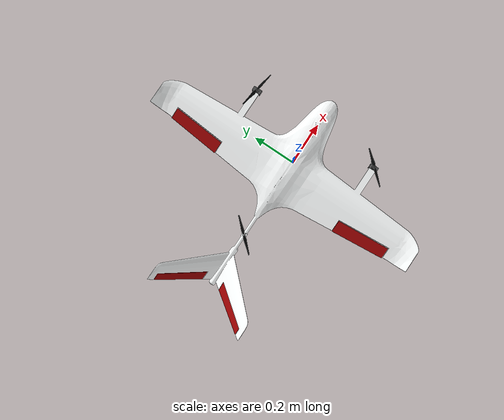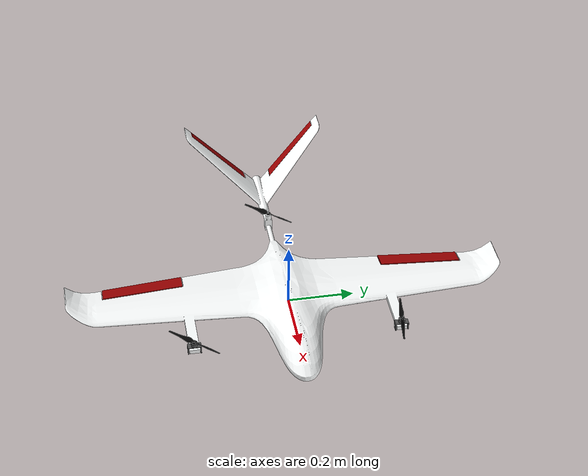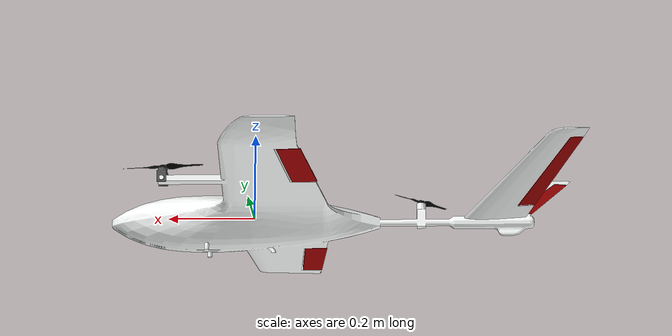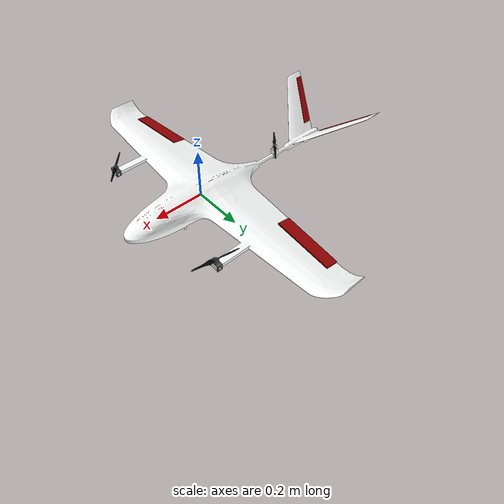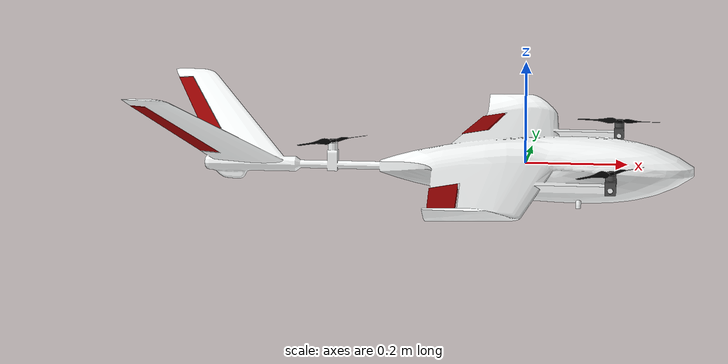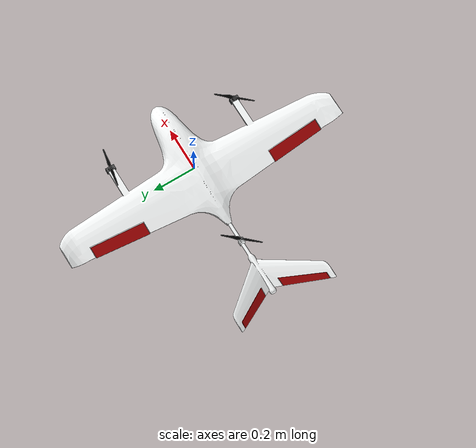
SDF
<?xml version="1.0"?>
<sdf version="1.9">
  <model name="tilt_tricopter_vtol">

    <!-- ==================== FUSELAGE / BASE LINK ==================== -->
    <link name="base_link">
      <pose>0 0 0 0 0 0</pose>
      <inertial>
        <pose>0 0 0 0 0 0</pose>
        <mass>1.8</mass>
        <inertia>
          <ixx>0.12</ixx>
          <ixy>0</ixy>
          <ixz>0</ixz>
          <iyy>0.08</iyy>
          <iyz>0</iyz>
          <izz>0.18</izz>
        </inertia>
      </inertial>

      <collision name='base_link_collision'>
        <pose degrees="true">0 0 0 0 0 0</pose>
        <geometry>
          <mesh>
            <scale>1 1 1</scale>
            <uri>model://stallion_vtol/meshes/base_link.dae</uri>
          </mesh>
        </geometry>
      </collision>

      <visual name='base_link_visual'>
        <pose degrees="true">0 0 0 0 0 0</pose>
        <geometry>
          <mesh>
            <scale>1 1 1</scale>
            <uri>model://stallion_vtol/meshes/base_link.dae</uri>
          </mesh>
        </geometry>
        <material>
          <diffuse>0.990196109 1 1 1</diffuse>
          <ambient>0.990196109 1 1 1</ambient>
        </material>
      </visual>

      <sensor name="imu_sensor" type="imu">
        <pose degrees="true">0 0 0 180 0 0</pose>
        <always_on>1</always_on>
        <update_rate>1000.0</update_rate>
      </sensor>
      <sensor name="navsat_sensor" type="navsat">
        <always_on>1</always_on>
        <update_rate>1</update_rate>
      </sensor>

      <!-- FPV Camera Sensor -->
      <sensor name="fpv_camera" type="camera">
        <!-- x, y, z, roll, pitch, yaw. Placed 0.4m forward at the nose -->
        <pose degrees="true">-0.3 0 0.1 0 0 0</pose>
        <always_on>1</always_on>
        <update_rate>60.0</update_rate>
        <camera name="fpv_cam">
          <!-- 80 degree Field of View -->
          <horizontal_fov>1.39626</horizontal_fov>
          <image>
            <width>1080</width>
            <height>720</height>
            <format>R8G8B8</format>
          </image>
          <clip>
            <near>0.1</near>
            <far>10000</far>
          </clip>
        </camera>
        <topic>/fpv_camera/image</topic>
      </sensor>
    </link>

    <!-- ==================== FRONT LEFT TILT MECHANISM ==================== -->
    <!-- Front-Left Tilt Arm -->
    <link name="tilt_arm_fl">
      <pose relative_to="tilt_joint_fl">0 0 0 0 0 0</pose>
      <inertial>
        <pose>0 0.02 0.014 0 0 0</pose>
        <mass>0.140</mass>
        <inertia>
          <ixx>1.6508046241417101e-06</ixx>
          <ixy>-5.1572666366376299e-23</ixy>
          <ixz>-9.1555688118111702e-23</ixz>
          <iyy>8.1074718631536401e-07</iyy>
          <iyz>3.83386639583297e-23</iyz>
          <izz>1.2810119697389901e-06</izz>
        </inertia>
      </inertial>

      <collision name='L_Tilt_collision'>
        <pose>0 0 0 0 0 0</pose>
        <geometry>
          <mesh>
            <scale>1 1 1</scale>
            <uri>model://stallion_vtol/meshes/L_Tilt.dae</uri>
          </mesh>
        </geometry>
      </collision>

      <visual name='L_Tilt_visual'>
        <pose>0 0 0 0 0 0</pose>
        <geometry>
          <mesh>
            <scale>1 1 1</scale>
            <uri>model://stallion_vtol/meshes/L_Tilt.dae</uri>
          </mesh>
        </geometry>
        <material>
          <diffuse>0.313725501 0.313725501 0.313725501 1</diffuse>
          <ambient>0.313725501 0.313725501 0.313725501 1</ambient>
        </material>
      </visual>
    </link>

    <!-- Front-Left Tilt Joint (Pitch axis tilt for vector yaw / forward flight) -->
    <joint name="tilt_joint_fl" type="revolute">
      <parent>base_link</parent>
      <child>tilt_arm_fl</child>
      <pose relative_to='base_link'>0.176 0.289 0.01 0 0 0</pose>
      <axis>
        <xyz>0 1 0</xyz> <!-- Pitch axis rotation -->
        <limit>
          <lower>-0.349</lower> <!-- -20 deg -->
          <upper>1.5708</upper>  <!-- +90 deg (forward flight) -->
          <effort>10</effort>
          <velocity>5</velocity>
        </limit>
        <dynamics>
          <damping>0.01</damping>
        </dynamics>
      </axis>
    </joint>

    <!-- Front-Left Propeller -->
    <link name="prop_fl">
      <pose relative_to="prop_joint_fl">0 0 0 0 0 0</pose>
      <inertial>
        <pose>0 0 -0.0027139163672551501 0 0 0</pose>
        <mass>0.010</mass>
        <inertia>
          <ixx>7.9212961749149794e-08</ixx>
          <ixy>3.4408539846694802e-07</ixy>
          <ixz>1.6110368408473699e-11</ixz>
          <iyy>2.12041876255836e-06</iyy>
          <iyz>-2.9625649082959198e-12</iyz>
          <izz>2.1858969773452702e-06</izz>
        </inertia>
      </inertial>

      <collision name='L_Prop_collision'>
        <pose>0 0 0 0 0 0</pose>
        <geometry>
          <mesh>
            <scale>1 1 1</scale>
            <uri>model://stallion_vtol/meshes/L_Prop.dae</uri>
          </mesh>
        </geometry>
      </collision>

      <visual name='L_Prop_visual'>
        <pose>0 0 0 0 0 0</pose>
        <geometry>
          <mesh>
            <scale>1 1 1</scale>
            <uri>model://stallion_vtol/meshes/L_Prop.dae</uri>
          </mesh>
        </geometry>
        <material>
          <ambient>0.01 0.01 0.01 1</ambient>
          <diffuse>0.01 0.01 0.01 1</diffuse>
          <specular>0.01 0.01 0.01 1</specular>
        </material>
      </visual>
    </link>

    <!-- Front-Left Propeller Joint -->
    <joint name="prop_joint_fl" type="revolute">
      <parent>tilt_arm_fl</parent>
      <child>prop_fl</child>
      <pose relative_to='tilt_arm_fl'>0 0.02 0.032 0 0 0</pose>
      <axis>
        <xyz>0 0 1</xyz>
        <dynamics>
          <damping>0.0001</damping>
        </dynamics>
        <limit>
          <lower>-1e16</lower>
          <upper>1e16</upper>
        </limit>
      </axis>
    </joint>

    <!-- ==================== FRONT RIGHT TILT MECHANISM ==================== -->
    <!-- Front-Right Tilt Arm -->
    <link name="tilt_arm_fr">
      <pose relative_to='tilt_joint_fr'>0 0 0 0 0 0</pose>
      <inertial>
        <pose>0 0.02 0.014 0 0 0</pose>
        <mass>0.140</mass>
        <inertia>
          <ixx>1.6508046241417101e-06</ixx>
          <ixy>-2.01032599132299e-22</ixy>
          <ixz>2.1343224645573699e-22</ixz>
          <iyy>8.1074718631536295e-07</iyy>
          <iyz>-7.8070651190802401e-23</iyz>
          <izz>1.2810119697389901e-06</izz>
        </inertia>
      </inertial>

      <collision name='R_Tilt_collision'>
        <pose>0 0 0 0 0 0</pose>
        <geometry>
          <mesh>
            <scale>1 1 1</scale>
            <uri>model://stallion_vtol/meshes/R_Tilt.dae</uri>
          </mesh>
        </geometry>
      </collision>

      <visual name='R_Tilt_visual'>
        <pose>0 0 0 0 0 0</pose>
        <geometry>
          <mesh>
            <scale>1 1 1</scale>
            <uri>model://stallion_vtol/meshes/R_Tilt.dae</uri>
          </mesh>
        </geometry>
        <material>
          <diffuse>0.313725501 0.313725501 0.313725501 1</diffuse>
          <ambient>0.313725501 0.313725501 0.313725501 1</ambient>
        </material>
      </visual>

    </link>

    <!-- Front-Right Tilt Joint -->
    <joint name="tilt_joint_fr" type="revolute">
      <parent>base_link</parent>
      <child>tilt_arm_fr</child>
      <pose relative_to='base_link'>0.176 -0.2888 0.01 0 0 -3.14</pose>
      <axis>
        <xyz>0 -1 0</xyz> <!-- Pitch axis rotation -->
        <limit>
          <lower>-0.349</lower> <!-- -20 deg -->
          <upper>1.5708</upper>  <!-- +90 deg (forward flight) -->
          <effort>10</effort>
          <velocity>5</velocity>
        </limit>
        <dynamics>
          <damping>0.01</damping>
        </dynamics>
      </axis>
    </joint>

    <!-- Front-Right Propeller -->
    <link name="prop_fr">
      <pose relative_to="prop_joint_fr">0 0 0 0 0 0</pose>
      <inertial>
        <pose>0 0 -0.0027139221164931299 0 0 0</pose>
        <mass>0.010</mass>
        <inertia>
          <ixx>1.2319838350847699e-06</ixx>
          <ixy>-1.0689043188687799e-06</ixy>
          <ixz>1.1083054254393199e-11</ixz>
          <iyy>9.6764767051378306e-07</iyy>
          <iyz>1.20607963356524e-11</iyz>
          <izz>2.1858967688241502e-06</izz>
        </inertia>
      </inertial>

      <collision name='R_Prop_collision'>
        <pose>0 0 0 0 0 0</pose>
        <geometry>
          <mesh>
            <scale>1 1 1</scale>
            <uri>model://stallion_vtol/meshes/R_Prop.dae</uri>
          </mesh>
        </geometry>
      </collision>

      <visual name='R_Prop_visual'>
        <pose>0 0 0 0 0 0</pose>
        <geometry>
          <mesh>
            <scale>1 1 1</scale>
            <uri>model://stallion_vtol/meshes/R_Prop.dae</uri>
          </mesh>
        </geometry>
        <material>
          <ambient>0.01 0.01 0.01 1</ambient>
          <diffuse>0.01 0.01 0.01 1</diffuse>
          <specular>0.01 0.01 0.01 1</specular>
        </material>
      </visual>
    </link>

    <!-- Front-Right Propeller Joint -->
    <joint name="prop_joint_fr" type="revolute">
      <parent>tilt_arm_fr</parent>
      <child>prop_fr</child>
      <pose relative_to='tilt_arm_fr'>0 0.02 0.032 0 0 -3.14</pose>
      <axis>
        <xyz>0 0 1</xyz>
        <dynamics>
          <damping>0.0001</damping>
        </dynamics>
        <limit>
          <lower>-1e16</lower>
          <upper>1e16</upper>
        </limit>
      </axis>
    </joint>

    <!-- ==================== REAR FIXED MOTOR ==================== -->
    <!-- Rear Propeller -->
    <link name="prop_rear">
      <pose relative_to="prop_joint_rear">0 0 0 0 0 0</pose>
      <inertial>
        <pose>0 0 -0.0027139221164931299 0 0 0</pose>
        <mass>0.010</mass>
        <inertia>
          <ixx>1.2319838350847699e-06</ixx>
          <ixy>-1.0689043188687799e-06</ixy>
          <ixz>1.1083054254393199e-11</ixz>
          <iyy>9.6764767051378306e-07</iyy>
          <iyz>1.20607963356524e-11</iyz>
          <izz>2.1858967688241502e-06</izz>
        </inertia>
      </inertial>

      <collision name='R_Prop_collision'>
        <pose>0 0 0 0 0 0</pose>
        <geometry>
          <mesh>
            <scale>1 1 1</scale>
            <uri>model://stallion_vtol/meshes/R_Prop.dae</uri>
          </mesh>
        </geometry>

      </collision>

      <visual name='R_Prop_visual'>
        <pose>0 0 0 0 0 0</pose>
        <geometry>
          <mesh>
            <scale>1 1 1</scale>
            <uri>model://stallion_vtol/meshes/R_Prop.dae</uri>
          </mesh>
        </geometry>
        <material>
          <ambient>0.01 0.01 0.01 1</ambient>
          <diffuse>0.01 0.01 0.01 1</diffuse>
          <specular>0.01 0.01 0.01 1</specular>
        </material>
      </visual>
    </link>

    <!-- Rear Propeller Joint (fixed directly to base_link) -->
    <joint name="prop_joint_rear" type="revolute">
      <parent>base_link</parent>
      <child>prop_rear</child>
      <pose relative_to='base_link'>-0.385 0 0.040297 0 0 0</pose>
      <axis>
        <xyz>0 0 1</xyz>
        <dynamics>
          <damping>0.0001</damping>
        </dynamics>
        <limit>
          <lower>-1e16</lower>
          <upper>1e16</upper>
        </limit>
      </axis>
    </joint>

    <joint name='J_L_Aileron' type='revolute'>
      <parent>base_link</parent>
      <child>L_Aileron</child>
      <pose relative_to='base_link'>-0.1044 0.30932 0.008 1.57 0 3.064</pose>
      <axis>
        <xyz>0 0 -1</xyz>
        <limit>
          <lower>-0.17453</lower>
          <upper>0.17453</upper>
          <effort>5.0</effort>
          <velocity>10.0</velocity>
        </limit>
        <dynamics>
          <damping>0.0001</damping>
          <friction>0</friction>
          <spring_reference>0</spring_reference>
          <spring_stiffness>0</spring_stiffness>
        </dynamics>
      </axis>
    </joint>
    <link name='L_Aileron'>
      <pose relative_to='J_L_Aileron' degrees='true'>0 0 0 0 0 0</pose>
      <inertial>
        <pose>0.019319410829812499 -0.0015985079490108401 0.118957401128077 0 0 0</pose>
        <mass>0.016</mass>
        <inertia>
          <ixx>0.00044028529108299999</ixx>
          <ixy>1.35503903996988e-06</ixy>
          <ixz>5.0702719884528399e-06</ixz>
          <iyy>0.00045603458419739398</iyy>
          <iyz>-4.2973911951881198e-07</iyz>
          <izz>1.7003421149911501e-05</izz>
        </inertia>
      </inertial>

      <visual name='L_Aileron_visual'>
        <pose>0 0 0 0 0 0</pose>
        <geometry>
          <mesh>
            <scale>1 1 1</scale>
            <uri>model://stallion_vtol/meshes/L_Aileron.dae</uri>
          </mesh>
        </geometry>
        <material>
          <diffuse>0.6 0 0 1</diffuse>
          <ambient>0.6 0 0 1</ambient>
          <specular>0.01 0.01 0.01 1</specular>
        </material>
      </visual>
    </link>

    <joint name='J_L_Rudder' type='revolute'>
      <parent>base_link</parent>
      <child>L_Rudder</child>
      <pose relative_to='base_link'>-0.61373 0.03806 0.019902 2.1235 -0.275 0.415</pose>
      <axis>
        <xyz>0 0 1</xyz>
        <limit>
          <lower>-0.17453</lower>
          <upper>0.17453</upper>
          <effort>5.0</effort>
          <velocity>10.0</velocity>
        </limit>
        <dynamics>
          <damping>0.0001</damping>
          <friction>0</friction>
          <spring_reference>0</spring_reference>
          <spring_stiffness>0</spring_stiffness>
        </dynamics>
      </axis>
    </joint>
    <link name='L_Rudder'>
      <pose relative_to='J_L_Rudder'>0 0 0 0 0 0</pose>
      <inertial>
        <pose>-0.00304746068301676 -0.00363160130556084 -0.105572846583837 0 0 0</pose>
        <mass>0.010</mass>
        <inertia>
          <ixx>8.6199016260957796e-05</ixx>
          <ixy>-5.6589289969212396e-12</ixy>
          <ixz>-4.8692063497864804e-07</ixz>
          <iyy>8.7366984895579199e-05</iyy>
          <iyz>3.3887043768425699e-10</iyz>
          <izz>1.2400412416049001e-06</izz>
        </inertia>
      </inertial>
      <collision name='L_Rudder_collision'>
        <pose>0 0 0 0 0 0</pose>
        <geometry>
          <mesh>
            <scale>1 1 1</scale>
            <uri>model://stallion_vtol/meshes/L_Rudder.dae</uri>
          </mesh>
        </geometry>
      </collision>
      <visual name='L_Rudder_visual'>
        <pose>0 0 0 0 0 0</pose>
        <geometry>
          <mesh>
            <scale>1 1 1</scale>
            <uri>model://stallion_vtol/meshes/L_Rudder.dae</uri>
          </mesh>
        </geometry>
        <material>
          <diffuse>0.6 0 0 1</diffuse>
          <ambient>0.6 0 0 1</ambient>
          <specular>0.01 0.01 0.01 1</specular>
        </material>
      </visual>
    </link>

    <joint name='J_R_Aileron' type='revolute'>
      <parent>base_link</parent>
      <child>R_Aileron</child>
      <pose relative_to='base_link'>-0.10443 -0.30930999999999997 0.0080037000000000007 1.5704000000000002 0 0.07782399999999999</pose>
      <axis>
        <xyz>0 0 1</xyz>
        <limit>
          <lower>-0.17452999999999999</lower>
          <upper>0.17452999999999999</upper>
          <effort>5.0</effort>
          <velocity>10.0</velocity>
        </limit>
        <dynamics>
          <damping>0.0001</damping>
          <friction>0</friction>
        </dynamics>
      </axis>
    </joint>
    <link name='R_Aileron'>
      <pose relative_to='J_R_Aileron' degrees='true'>0 0 0 0 0 0</pose>
      <inertial>
        <pose>-0.0187801219375088 -0.0017102252922158701 0.118960916571928 0 0 0</pose>
        <mass>0.016</mass>
        <inertia>
          <ixx>0.00044034243406479098</ixx>
          <ixy>-1.4819480765882799e-06</ixy>
          <ixz>-3.3799692095839499e-06</ixz>
          <iyy>0.00045601138992668798</iyy>
          <iyz>-3.1787437036860999e-07</iyz>
          <izz>1.6969472438767499e-05</izz>
        </inertia>
      </inertial>
      <collision name='R_Aileron_collision'>
        <pose>0 0 0 0 0 0</pose>
        <geometry>
          <mesh>
            <scale>1 1 1</scale>
            <uri>model://stallion_vtol/meshes/R_Aileron.dae</uri>
          </mesh>
        </geometry>
      </collision>
      <visual name='R_Aileron_visual'>
        <pose>0 0 0 0 0 0</pose>
        <geometry>
          <mesh>
            <scale>1 1 1</scale>
            <uri>model://stallion_vtol/meshes/R_Aileron.dae</uri>
          </mesh>
        </geometry>
        <material>
          <diffuse>0.6 0 0 1</diffuse>
          <ambient>0.6 0 0 1</ambient>
          <specular>0.01 0.01 0.01 1</specular>
        </material>
      </visual>
    </link>

    <joint name='J_R_Rudder' type='revolute'>
      <parent>base_link</parent>
      <child>R_Rudder</child>
      <pose relative_to='base_link'>-0.60894000000000004 -0.042227000000000001 0.018336000000000002 -2.1234999999999999 -0.27505000000000002 -0.41477000000000003</pose>
      <axis>
        <xyz>0 0 -1</xyz>
        <limit>
          <lower>-0.17453</lower>
          <upper>0.17453</upper>
          <effort>5.0</effort>
          <velocity>10.0</velocity>
        </limit>
        <dynamics>
          <damping>0.0001</damping>
          <friction>0</friction>
          <spring_reference>0</spring_reference>
          <spring_stiffness>0</spring_stiffness>
        </dynamics>
      </axis>
    </joint>
    <link name='R_Rudder'>
      <pose relative_to='J_R_Rudder' degrees='true'>0 0 0 0 0 0</pose>
      <inertial>
        <pose>-0.00796 0 -0.1056 0 0 0</pose>
        <mass>0.010</mass>
        <inertia>
          <ixx>8.61939121689117e-05</ixx>
          <ixy>8.4556113501244802e-11</ixy>
          <ixz>-8.1896557437626005e-07</ixz>
          <iyy>8.7366984889395994e-05</iyy>
          <iyz>-2.6894751914679101e-10</iyz>
          <izz>1.2451453394070899e-06</izz>
        </inertia>
      </inertial>
      <collision name='R_Rudder_collision'>
        <pose>0 0 0 0 0 0</pose>
        <geometry>
          <mesh>
            <scale>1 1 1</scale>
            <uri>model://stallion_vtol/meshes/R_Rudder.dae</uri>
          </mesh>
        </geometry>
      </collision>
      <visual name='R_Rudder_visual'>
        <pose>0 0 0 0 0 0</pose>
        <geometry>
          <mesh>
            <scale>1 1 1</scale>
            <uri>model://stallion_vtol/meshes/R_Rudder.dae</uri>
          </mesh>
        </geometry>
        <material>
          <diffuse>0.6 0 0 1</diffuse>
          <ambient>0.6 0 0 1</ambient>
          <specular>0.01 0.01 0.01 1</specular>
        </material>
      </visual>
    </link>

    <!-- ==================== SYSTEM PLUGINS ==================== -->
    <plugin filename="gz-sim-joint-state-publisher-system"
      name="gz::sim::systems::JointStatePublisher">
    </plugin>

    <!-- Joint Position Controllers for Front Tilt Servos -->
    <plugin filename="gz-sim-joint-position-controller-system"
      name="gz::sim::systems::JointPositionController">
      <joint_name>tilt_joint_fl</joint_name>
      <p_gain>15.0</p_gain>
      <i_gain>0.0</i_gain>
      <d_gain>0.5</d_gain>
    </plugin>

    <plugin filename="gz-sim-joint-position-controller-system"
      name="gz::sim::systems::JointPositionController">
      <joint_name>tilt_joint_fr</joint_name>
      <p_gain>15.0</p_gain>
      <i_gain>0.0</i_gain>
      <d_gain>0.5</d_gain>
    </plugin>

    <!-- Positive is up. -->
    <plugin
      filename="gz-sim-joint-position-controller-system"
      name="gz::sim::systems::JointPositionController">
      <joint_name>J_L_Aileron</joint_name>
      <initial_position>0.0</initial_position>
      <topic>/J_L_Aileron/cmd_pos</topic>
      <p_gain>10</p_gain>
      <i_gain>0.0</i_gain>
      <d_gain>0.0</d_gain>
      <i_max>1</i_max>
      <i_min>-1</i_min>
      <cmd_max>5</cmd_max>
      <cmd_min>-5</cmd_min>
    </plugin>

    <!-- Positive is up. -->
    <plugin
      filename="gz-sim-joint-position-controller-system"
      name="gz::sim::systems::JointPositionController">
      <joint_name>J_R_Aileron</joint_name>
      <initial_position>0.0</initial_position>
      <topic>/J_R_Aileron/cmd_pos</topic>
      <p_gain>10</p_gain>
      <i_gain>0.0</i_gain>
      <d_gain>0.0</d_gain>
      <i_max>1</i_max>
      <i_min>-1</i_min>
      <cmd_max>5</cmd_max>
      <cmd_min>-5</cmd_min>
    </plugin>

    <!-- Positive is up. -->
    <plugin
      filename="gz-sim-joint-position-controller-system"
      name="gz::sim::systems::JointPositionController">
      <joint_name>J_L_Rudder</joint_name>
      <initial_position>0.0</initial_position>
      <topic>/J_L_Rudder/cmd_pos</topic>
      <p_gain>10</p_gain>
      <i_gain>0.0</i_gain>
      <d_gain>0.0</d_gain>
      <i_max>1</i_max>
      <i_min>-1</i_min>
      <cmd_max>5</cmd_max>
      <cmd_min>-5</cmd_min>
    </plugin>

    <!-- Positive is up. -->
    <plugin
      filename="gz-sim-joint-position-controller-system"
      name="gz::sim::systems::JointPositionController">
      <joint_name>J_R_Rudder</joint_name>
      <initial_position>0.0</initial_position>
      <topic>/J_R_Rudder/cmd_pos</topic>
      <p_gain>10</p_gain>
      <i_gain>0.0</i_gain>
      <d_gain>0.0</d_gain>
      <i_max>1</i_max>
      <i_min>-1</i_min>
      <cmd_max>5</cmd_max>
      <cmd_min>-5</cmd_min>
    </plugin>

    <!-- ==================== ROTOR LIFT-DRAG THRUST ==================== -->
    <!-- Front Left Motor (CCW Blade 1 & 2) -->
    <plugin filename="gz-sim-lift-drag-system" name="gz::sim::systems::LiftDrag">
      <a0>0.29</a0>
      <alpha_stall>1.4</alpha_stall>
      <cla>4.25</cla>
      <cda>0.10</cda>
      <area>0.002</area>
      <air_density>1.225</air_density>
      <cp>0.08 0 0</cp>
      <forward>0 1 0</forward>
      <upward>0 0 1</upward>
      <link_name>prop_fl</link_name>
    </plugin>
    <plugin filename="gz-sim-lift-drag-system" name="gz::sim::systems::LiftDrag">
      <a0>0.29</a0>
      <alpha_stall>1.4</alpha_stall>
      <cla>4.25</cla>
      <cda>0.10</cda>
      <area>0.002</area>
      <air_density>1.225</air_density>
      <cp>-0.08 0 0</cp>
      <forward>0 -1 0</forward>
      <upward>0 0 1</upward>
      <link_name>prop_fl</link_name>
    </plugin>

    <!-- Front Right Motor (CW Blade 1 & 2) -->
    <plugin filename="gz-sim-lift-drag-system" name="gz::sim::systems::LiftDrag">
      <a0>0.29</a0>
      <alpha_stall>1.4</alpha_stall>
      <cla>4.25</cla>
      <cda>0.10</cda>
      <area>0.002</area>
      <air_density>1.225</air_density>
      <cp>0.08 0 0</cp>
      <forward>0 -1 0</forward>
      <upward>0 0 1</upward>
      <link_name>prop_fr</link_name>
    </plugin>
    <plugin filename="gz-sim-lift-drag-system" name="gz::sim::systems::LiftDrag">
      <a0>0.29</a0>
      <alpha_stall>1.4</alpha_stall>
      <cla>4.25</cla>
      <cda>0.10</cda>
      <area>0.002</area>
      <air_density>1.225</air_density>
      <cp>-0.08 0 0</cp>
      <forward>0 1 0</forward>
      <upward>0 0 1</upward>
      <link_name>prop_fr</link_name>
    </plugin>

    <!-- Rear Motor (CCW Blade 1 & 2) -->
    <plugin filename="gz-sim-lift-drag-system" name="gz::sim::systems::LiftDrag">
      <a0>0.29</a0>
      <alpha_stall>1.4</alpha_stall>
      <cla>4.25</cla>
      <cda>0.10</cda>
      <area>0.002</area>
      <air_density>1.225</air_density>
      <cp>0.08 0 0</cp>
      <forward>0 1 0</forward>
      <upward>0 0 1</upward>
      <link_name>prop_rear</link_name>
    </plugin>
    <plugin filename="gz-sim-lift-drag-system" name="gz::sim::systems::LiftDrag">
      <a0>0.29</a0>
      <alpha_stall>1.4</alpha_stall>
      <cla>4.25</cla>
      <cda>0.10</cda>
      <area>0.002</area>
      <air_density>1.225</air_density>
      <cp>-0.08 0 0</cp>
      <forward>0 -1 0</forward>
      <upward>0 0 1</upward>
      <link_name>prop_rear</link_name>
    </plugin>

    <!-- left wing -->
    <plugin filename="gz-sim-lift-drag-system"
        name="gz::sim::systems::LiftDrag">
      <a0>0.13</a0> <!-- -2.312 deg -->
      <cla>5.0</cla>
      <cda>0.06417112299</cda>
      <cma>-0.00095</cma>
      <alpha_stall>0.279253</alpha_stall>
      <cla_stall>-3.85</cla_stall>
      <cda_stall>-0.9233984055</cda_stall>
      <cma_stall>0</cma_stall>
      <cp>0 0.27 0.029</cp>
      <area>0.1325</area>
      <air_density>1.2041</air_density>
      <forward>1 0 0</forward>
      <upward>0 0 1</upward>
      <link_name>base_link</link_name>
      <control_joint_name>J_L_Aileron</control_joint_name>
      <control_joint_rad_to_cl>-0.75</control_joint_rad_to_cl>
    </plugin>

    <!-- right wing -->
    <plugin filename="gz-sim-lift-drag-system"
        name="gz::sim::systems::LiftDrag">
      <a0>0.13</a0> <!-- -2.312 deg -->
      <cla>5.0</cla>
      <cda>0.06417112299</cda>
      <cma>-0.00095</cma>
      <alpha_stall>0.279253</alpha_stall>
      <cla_stall>-3.85</cla_stall>
      <cda_stall>-0.9233984055</cda_stall>
      <cma_stall>0</cma_stall>
      <cp>0 -0.27 0.029</cp>
      <area>0.1325</area>
      <air_density>1.2041</air_density>
      <forward>1 0 0</forward>
      <upward>0 0 1</upward>
      <link_name>base_link</link_name>
      <control_joint_name>J_R_Aileron</control_joint_name>
      <control_joint_rad_to_cl>-0.75</control_joint_rad_to_cl>
    </plugin>

    <!-- left v-tail -->
    <plugin filename="gz-sim-lift-drag-system"
        name="gz::sim::systems::LiftDrag">
      <a0>0.13</a0>
      <cla>3.7</cla>
      <cda>0.06417112299</cda>
      <cma>0</cma>
      <alpha_stall>0.3391428111</alpha_stall>
      <cla_stall>-3.85</cla_stall>
      <cda_stall>-0.9233984055</cda_stall>
      <cma_stall>0</cma_stall>
      <cp>-0.33 0.08 0.051</cp>
      <area>0.035</area>
      <air_density>1.2041</air_density>
      <forward>1 0 0</forward>
      <upward>0 1 1</upward>
      <link_name>base_link</link_name>
      <control_joint_name>J_L_Rudder</control_joint_name>
      <control_joint_rad_to_cl>-2.0</control_joint_rad_to_cl>
    </plugin>

    <!-- right v-tail -->
    <plugin filename="gz-sim-lift-drag-system"
        name="gz::sim::systems::LiftDrag">
      <a0>0</a0>
      <cla>3.7</cla>
      <cda>0.06417112299</cda>
      <cma>0</cma>
      <alpha_stall>0.3391428111</alpha_stall>
      <cla_stall>-3.85</cla_stall>
      <cda_stall>-0.9233984055</cda_stall>
      <cma_stall>0</cma_stall>
      <cp>-0.33 -0.08 0.051</cp>
      <area>0.035</area>
      <air_density>1.2041</air_density>
      <forward>1 0 0</forward>
      <upward>0 -1 1</upward>
      <link_name>base_link</link_name>
      <control_joint_name>J_R_Rudder</control_joint_name>
      <control_joint_rad_to_cl>-2.0</control_joint_rad_to_cl>
    </plugin>

    <!-- ==================== ARDUPILOT PLUGIN ==================== -->
    <plugin name="ArduPilotPlugin"
      filename="ArduPilotPlugin">
      <!-- Port settings. -->
      <fdm_addr>127.0.0.1</fdm_addr>
      <fdm_port_in>9002</fdm_port_in>
      <connectionTimeoutMaxCount>5</connectionTimeoutMaxCount>
      <lock_step>1</lock_step>
      <have_32_channels>0</have_32_channels>

      <!-- Frame transforms.-->
      <modelXYZToAirplaneXForwardZDown>0 0 0 3.141593 0 0</modelXYZToAirplaneXForwardZDown>
      <gazeboXYZToNED>0 0 0 3.141593 0 1.57079632</gazeboXYZToNED>

      <!-- Sensors. -->
      <imuName>base_link::imu_sensor</imuName>

      <!-- Left Aileron-->
      <control channel="0">
        <jointName>J_L_Aileron</jointName>
        <multiplier>-1.0471976</multiplier>
        <offset>-0.5</offset>
        <servo_min>1000</servo_min>
        <servo_max>2000</servo_max>
        <type>COMMAND</type>
        <cmd_topic>/J_L_Aileron/cmd_pos</cmd_topic>
      </control>

      <!-- Right Aileron-->

      <control channel="0">
        <jointName>J_R_Aileron</jointName>
        <multiplier>1.0471976</multiplier>
        <offset>-0.5</offset>
        <servo_min>1000</servo_min>
        <servo_max>2000</servo_max>
        <type>COMMAND</type>
        <cmd_topic>/J_R_Aileron/cmd_pos</cmd_topic>
      </control>

      <control channel="1">
        <jointName>J_L_Rudder</jointName>
        <multiplier>1.0471976</multiplier>
        <offset>-0.5</offset>
        <servo_min>1000</servo_min>
        <servo_max>2000</servo_max>
        <type>COMMAND</type>
        <cmd_topic>/J_L_Rudder/cmd_pos</cmd_topic>
      </control>

      <control channel="3">
        <jointName>J_R_Rudder</jointName>
        <multiplier>1.0471976</multiplier>
        <offset>-0.5</offset>
        <servo_min>1000</servo_min>
        <servo_max>2000</servo_max>
        <type>COMMAND</type>
        <cmd_topic>/J_R_Rudder/cmd_pos</cmd_topic>
      </control>

      <!-- Motor 1: Front Right Propeller -->
      <control channel="4">
        <jointName>prop_joint_fr</jointName>
        <useForce>1</useForce>
        <multiplier>-1500</multiplier>
        <offset>0</offset>
        <servo_min>1000</servo_min>
        <servo_max>2000</servo_max>
        <type>VELOCITY</type>
        <p_gain>0.02</p_gain>
      </control>

      <!-- Motor 2: Front Left Propeller -->
      <control channel="5">
        <jointName>prop_joint_fl</jointName>
        <useForce>1</useForce>
        <multiplier>1500</multiplier>
        <offset>0</offset>
        <servo_min>1000</servo_min>
        <servo_max>2000</servo_max>
        <type>VELOCITY</type>
        <p_gain>0.02</p_gain>
      </control>

      <!-- Motor 4: Rear Propeller -->
      <control channel="6">
        <jointName>prop_joint_rear</jointName>
        <useForce>1</useForce>
        <multiplier>1500</multiplier>
        <offset>0</offset>
        <servo_min>1000</servo_min>
        <servo_max>2000</servo_max>
        <type>VELOCITY</type>
        <p_gain>0.02</p_gain>
      </control>

      <!-- Tilt Left Servo (Front-Left Vector Yaw / Pitch) -->
      <control channel="8">
        <jointName>tilt_joint_fl</jointName>
        <useForce>1</useForce>
        <multiplier>3.14</multiplier>
        <offset>-0.18</offset>
        <servo_min>1000</servo_min>
        <servo_max>2000</servo_max>
        <type>POSITION</type>
        <p_gain>10.0</p_gain>
      </control>

      <!-- Tilt Right Servo (Front-Right Vector Yaw / Pitch) -->
      <control channel="9">
        <jointName>tilt_joint_fr</jointName>
        <useForce>1</useForce>
        <multiplier>3.14</multiplier>
        <offset>-0.18</offset>
        <servo_min>1000</servo_min>
        <servo_max>2000</servo_max>
        <type>POSITION</type>
        <p_gain>10.0</p_gain>
      </control>
    </plugin>

  </model>
</sdf>
